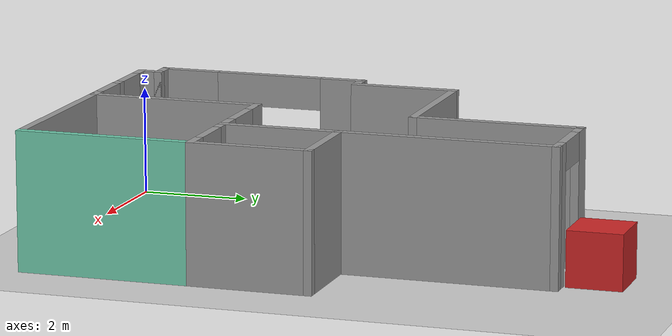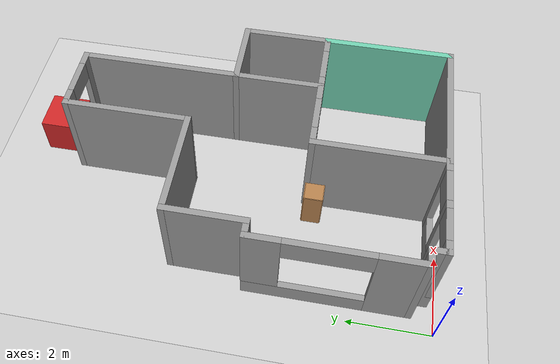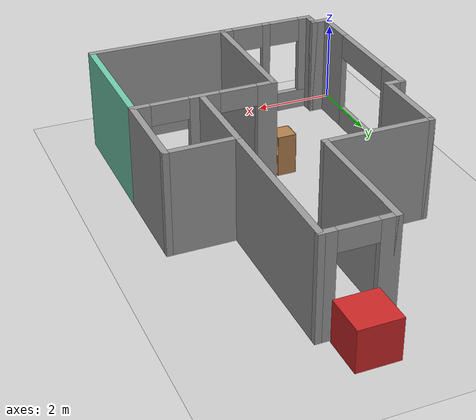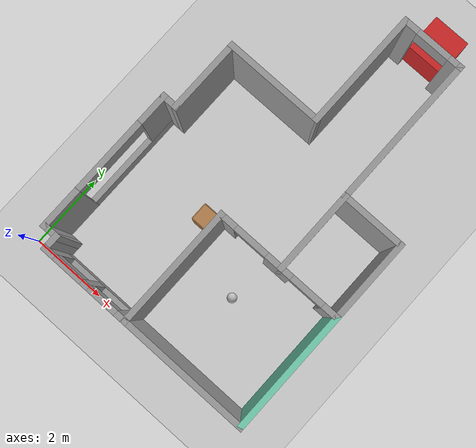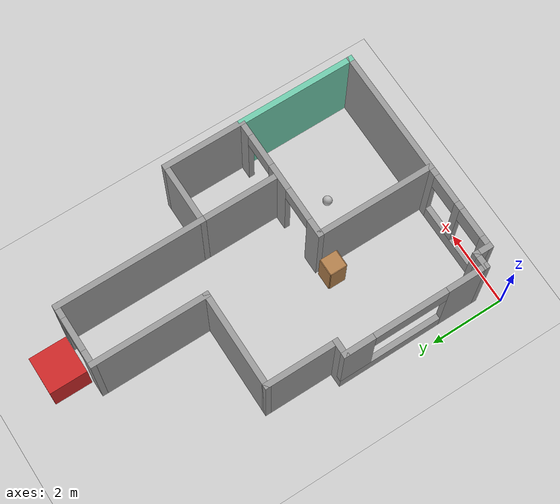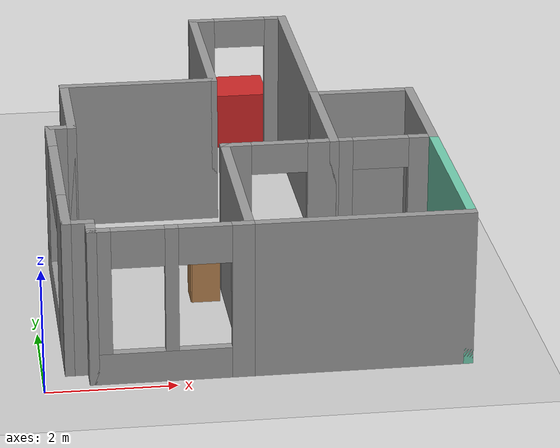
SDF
<sdf version="1.6">
 <world name="default">
  <light name="sun" type="directional">
   <pose>0 0 10 0 -0 0</pose>
   <diffuse>0.8 0.8 0.8 1</diffuse>
   <specular>0.2 0.2 0.2 1</specular>
   <attenuation>
    <range>1000</range>
    <constant>0.9</constant>
    <linear>0.01</linear>
    <quadratic>0.001</quadratic>
   </attenuation>
   <direction>-0.5 0.1 -0.9</direction>
  </light>
  <model name="ground_plane">
   <static>1</static>
   <link name="link">
    <collision name="collision">
     <geometry><plane><normal>0 0 1</normal><size>100 100</size></plane></geometry>
     <surface>
      <contact><collide_bitmask>65535</collide_bitmask></contact>
      <friction><ode><mu>100</mu><mu2>50</mu2></ode></friction>
     </surface>
    </collision>
    <visual name="visual">
     <cast_shadows>0</cast_shadows>
     <geometry><plane><normal>0 0 1</normal><size>100 100</size></plane></geometry>
     <material>
      <script><uri>file://media/materials/scripts/gazebo.material</uri><name>Gazebo/Grey</name></script>
     </material>
    </visual>
   </link>
  </model>
  <gravity>0 0 -9.8</gravity>
  <magnetic_field>6e-06 2.3e-05 -4.2e-05</magnetic_field>
  <atmosphere type="adiabatic"/>
  <physics name="default_physics" default="0" type="ode">
   <max_step_size>0.001</max_step_size>
   <real_time_factor>1</real_time_factor>
   <real_time_update_rate>1000</real_time_update_rate>
  </physics>
  <scene><ambient>0.4 0.4 0.4 1</ambient><background>0.7 0.7 0.7 1</background><shadows>1</shadows></scene>
  <spherical_coordinates>
   <surface_model>EARTH_WGS84</surface_model>
   <latitude_deg>0</latitude_deg>
   <longitude_deg>0</longitude_deg>
   <elevation>0</elevation>
   <heading_deg>0</heading_deg>
  </spherical_coordinates>
  <model name="Myplace">
   <pose>3.4372 4.76033 0 0 -0 0</pose>
   <link name="Wall_0">
    <collision name="Wall_0_Collision">
     <geometry><box><size>3.5 0.15 2.5</size></box></geometry>
     <pose>0 0 1.25 0 -0 0</pose>
    </collision>
    <visual name="Wall_0_Visual">
     <pose>0 0 1.25 0 -0 0</pose>
     <geometry><box><size>3.5 0.15 2.5</size></box></geometry>
     <material>
      <script><uri>file://media/materials/scripts/gazebo.material</uri><name>Gazebo/Grey</name></script>
      <ambient>1 1 1 1</ambient>
     </material>
     <meta><layer>0</layer></meta>
    </visual>
    <pose>1.35 -4.5295 0 0 -0 0</pose>
   </link>
   <link name="Wall_1">
    <collision name="Wall_1_Collision">
     <geometry><box><size>3.25 0.15 2.5</size></box></geometry>
     <pose>0 0 1.25 0 -0 0</pose>
    </collision>
    <visual name="Wall_1_Visual">
     <pose>0 0 1.25 0 -0 0</pose>
     <geometry><box><size>3.25 0.15 2.5</size></box></geometry>
     <material>
      <script><uri>file://media/materials/scripts/gazebo.material</uri><name>Gazebo/Grey</name></script>
      <ambient>0.435294 0.796078 0.67451 1</ambient>
     </material>
     <meta><layer>0</layer></meta>
    </visual>
    <pose>3.025 -2.9795 0 0 -0 1.5708</pose>
   </link>
   <link name="Wall_10">
    <collision name="Wall_10_Collision">
     <geometry><box><size>0.5 0.15 2.5</size></box></geometry>
     <pose>0 0 1.25 0 -0 0</pose>
    </collision>
    <visual name="Wall_10_Visual">
     <pose>0 0 1.25 0 -0 0</pose>
     <geometry><box><size>0.5 0.15 2.5</size></box></geometry>
     <material>
      <script><uri>file://media/materials/scripts/gazebo.material</uri><name>Gazebo/Grey</name></script>
      <ambient>1 1 1 1</ambient>
     </material>
     <meta><layer>0</layer></meta>
    </visual>
    <pose>-2.675 -4.3545 0 0 -0 1.5708</pose>
   </link>
   <link name="Wall_11">
    <collision name="Wall_11_Collision">
     <geometry><box><size>0.5 0.15 2.5</size></box></geometry>
     <pose>0 0 1.25 0 -0 0</pose>
    </collision>
    <visual name="Wall_11_Visual">
     <pose>0 0 1.25 0 -0 0</pose>
     <geometry><box><size>0.5 0.15 2.5</size></box></geometry>
     <material>
      <script><uri>file://media/materials/scripts/gazebo.material</uri><name>Gazebo/Grey</name></script>
      <ambient>1 1 1 1</ambient>
     </material>
     <meta><layer>0</layer></meta>
    </visual>
    <pose>-2.85 -4.1795 0 0 -0 3.14159</pose>
   </link>
   <link name="Wall_12">
    <pose>-3.025 -2.2545 0 0 -0 1.5708</pose>
    <visual name="Wall_12_Visual_0">
     <pose>-1.43085 0 1.25 0 -0 0</pose>
     <geometry><box><size>1.1383 0.15 2.5</size></box></geometry>
     <material>
      <script><uri>file://media/materials/scripts/gazebo.material</uri><name>Gazebo/Grey</name></script>
      <ambient>1 1 1 1</ambient>
     </material>
     <meta><layer>0</layer></meta>
    </visual>
    <collision name="Wall_12_Collision_0">
     <geometry><box><size>1.1383 0.15 2.5</size></box></geometry>
     <pose>-1.43085 0 1.25 0 -0 0</pose>
    </collision>
    <visual name="Wall_12_Visual_1">
     <pose>0.569148 0 0.25 0 -0 0</pose>
     <geometry><box><size>2.8617 0.15 0.5</size></box></geometry>
     <material>
      <script><uri>file://media/materials/scripts/gazebo.material</uri><name>Gazebo/Grey</name></script>
      <ambient>1 1 1 1</ambient>
     </material>
     <meta><layer>0</layer></meta>
    </visual>
    <collision name="Wall_12_Collision_1">
     <geometry><box><size>2.8617 0.15 0.5</size></box></geometry>
     <pose>0.569148 0 0.25 0 -0 0</pose>
    </collision>
    <visual name="Wall_12_Visual_2">
     <pose>1.56915 0 1.5 0 -0 0</pose>
     <geometry><box><size>0.861703 0.15 2</size></box></geometry>
     <material>
      <script><uri>file://media/materials/scripts/gazebo.material</uri><name>Gazebo/Grey</name></script>
      <ambient>1 1 1 1</ambient>
     </material>
     <meta><layer>0</layer></meta>
    </visual>
    <collision name="Wall_12_Collision_2">
     <geometry><box><size>0.861703 0.15 2</size></box></geometry>
     <pose>1.56915 0 1.5 0 -0 0</pose>
    </collision>
    <visual name="Wall_12_Visual_3">
     <pose>0.138297 0 2.2 0 -0 0</pose>
     <geometry><box><size>2 0.15 0.6</size></box></geometry>
     <material>
      <script><uri>file://media/materials/scripts/gazebo.material</uri><name>Gazebo/Grey</name></script>
      <ambient>1 1 1 1</ambient>
     </material>
     <meta><layer>0</layer></meta>
    </visual>
    <collision name="Wall_12_Collision_3">
     <geometry><box><size>2 0.15 0.6</size></box></geometry>
     <pose>0.138297 0 2.2 0 -0 0</pose>
    </collision>
   </link>
   <link name="Wall_13">
    <collision name="Wall_13_Collision">
     <geometry><box><size>0.5 0.15 2.5</size></box></geometry>
     <pose>0 0 1.25 0 -0 0</pose>
    </collision>
    <visual name="Wall_13_Visual">
     <pose>0 0 1.25 0 -0 0</pose>
     <geometry><box><size>0.5 0.15 2.5</size></box></geometry>
     <material>
      <script><uri>file://media/materials/scripts/gazebo.material</uri><name>Gazebo/Grey</name></script>
      <ambient>1 1 1 1</ambient>
     </material>
     <meta><layer>0</layer></meta>
    </visual>
    <pose>-2.85 -0.3295 0 0 -0 0</pose>
   </link>
   <link name="Wall_14">
    <collision name="Wall_14_Collision">
     <geometry><box><size>2.009 0.15 2.5</size></box></geometry>
     <pose>0 0 1.25 0 -0 0</pose>
    </collision>
    <visual name="Wall_14_Visual">
     <pose>0 0 1.25 0 -0 0</pose>
     <geometry><box><size>2.009 0.15 2.5</size></box></geometry>
     <material>
      <script><uri>file://media/materials/scripts/gazebo.material</uri><name>Gazebo/Grey</name></script>
      <ambient>1 1 1 1</ambient>
     </material>
     <meta><layer>0</layer></meta>
    </visual>
    <pose>-2.675 0.6 0 0 -0 1.5708</pose>
   </link>
   <link name="Wall_15">
    <collision name="Wall_15_Collision">
     <geometry><box><size>2.65002 0.15 2.5</size></box></geometry>
     <pose>0 0 1.25 0 -0 0</pose>
    </collision>
    <visual name="Wall_15_Visual">
     <pose>0 0 1.25 0 -0 0</pose>
     <geometry><box><size>2.65002 0.15 2.5</size></box></geometry>
     <material>
      <script><uri>file://media/materials/scripts/gazebo.material</uri><name>Gazebo/Grey</name></script>
      <ambient>1 1 1 1</ambient>
     </material>
     <meta><layer>0</layer></meta>
    </visual>
    <pose>-1.425 1.5295 0 0 -0 0</pose>
   </link>
   <link name="Wall_17">
    <collision name="Wall_17_Collision">
     <geometry><box><size>4.009 0.15 2.5</size></box></geometry>
     <pose>0 0 1.25 0 -0 0</pose>
    </collision>
    <visual name="Wall_17_Visual">
     <pose>0 0 1.25 0 -0 0</pose>
     <geometry><box><size>4.009 0.15 2.5</size></box></geometry>
     <material>
      <script><uri>file://media/materials/scripts/gazebo.material</uri><name>Gazebo/Grey</name></script>
      <ambient>1 1 1 1</ambient>
     </material>
     <meta><layer>0</layer></meta>
    </visual>
    <pose>1.425 2.6 0 0 -0 1.5708</pose>
   </link>
   <link name="Wall_18">
    <pose>0.625 4.5295 0 0 -0 3.14159</pose>
    <visual name="Wall_18_Visual_0">
     <pose>-0.676283 0 1.25 0 -0 0</pose>
     <geometry><box><size>0.397433 0.15 2.5</size></box></geometry>
     <material>
      <script><uri>file://media/materials/scripts/gazebo.material</uri><name>Gazebo/Grey</name></script>
      <ambient>1 1 1 1</ambient>
     </material>
     <meta><layer>0</layer></meta>
    </visual>
    <collision name="Wall_18_Collision_0">
     <geometry><box><size>0.397433 0.15 2.5</size></box></geometry>
     <pose>-0.676283 0 1.25 0 -0 0</pose>
    </collision>
    <visual name="Wall_18_Visual_1">
     <pose>0.648717 0 1.25 0 -0 0</pose>
     <geometry><box><size>0.452567 0.15 2.5</size></box></geometry>
     <material>
      <script><uri>file://media/materials/scripts/gazebo.material</uri><name>Gazebo/Grey</name></script>
      <ambient>1 1 1 1</ambient>
     </material>
     <meta><layer>0</layer></meta>
    </visual>
    <collision name="Wall_18_Collision_1">
     <geometry><box><size>0.452567 0.15 2.5</size></box></geometry>
     <pose>0.648717 0 1.25 0 -0 0</pose>
    </collision>
    <visual name="Wall_18_Visual_2">
     <pose>-0.027567 0 2.25 0 -0 0</pose>
     <geometry><box><size>0.9 0.15 0.5</size></box></geometry>
     <material>
      <script><uri>file://media/materials/scripts/gazebo.material</uri><name>Gazebo/Grey</name></script>
      <ambient>1 1 1 1</ambient>
     </material>
     <meta><layer>0</layer></meta>
    </visual>
    <collision name="Wall_18_Collision_2">
     <geometry><box><size>0.9 0.15 0.5</size></box></geometry>
     <pose>-0.027567 0 2.25 0 -0 0</pose>
    </collision>
   </link>
   <link name="Wall_19">
    <collision name="Wall_19_Collision">
     <geometry><box><size>3.15 0.15 2.5</size></box></geometry>
     <pose>0 0 1.25 0 -0 0</pose>
    </collision>
    <visual name="Wall_19_Visual">
     <pose>0 0 1.25 0 -0 0</pose>
     <geometry><box><size>3.15 0.15 2.5</size></box></geometry>
     <material>
      <script><uri>file://media/materials/scripts/gazebo.material</uri><name>Gazebo/Grey</name></script>
      <ambient>1 1 1 1</ambient>
     </material>
     <meta><layer>0</layer></meta>
    </visual>
    <pose>-0.175 3.0295 0 0 0 -1.5708</pose>
   </link>
   <link name="Wall_2">
    <pose>1.35 -1.4295 0 0 -0 3.14159</pose>
    <visual name="Wall_2_Visual_0">
     <pose>-1.5127 0 1.25 0 -0 0</pose>
     <geometry><box><size>0.474589 0.15 2.5</size></box></geometry>
     <material>
      <script><uri>file://media/materials/scripts/gazebo.material</uri><name>Gazebo/Grey</name></script>
      <ambient>1 1 1 1</ambient>
     </material>
     <meta><layer>0</layer></meta>
    </visual>
    <collision name="Wall_2_Collision_0">
     <geometry><box><size>0.474589 0.15 2.5</size></box></geometry>
     <pose>-1.5127 0 1.25 0 -0 0</pose>
    </collision>
    <visual name="Wall_2_Visual_1">
     <pose>-0.011425 0 1.25 0 -0 0</pose>
     <geometry><box><size>0.727971 0.15 2.5</size></box></geometry>
     <material>
      <script><uri>file://media/materials/scripts/gazebo.material</uri><name>Gazebo/Grey</name></script>
      <ambient>1 1 1 1</ambient>
     </material>
     <meta><layer>0</layer></meta>
    </visual>
    <collision name="Wall_2_Collision_1">
     <geometry><box><size>0.727971 0.15 2.5</size></box></geometry>
     <pose>-0.011425 0 1.25 0 -0 0</pose>
    </collision>
    <visual name="Wall_2_Visual_2">
     <pose>1.50128 0 1.25 0 -0 0</pose>
     <geometry><box><size>0.49744 0.15 2.5</size></box></geometry>
     <material>
      <script><uri>file://media/materials/scripts/gazebo.material</uri><name>Gazebo/Grey</name></script>
      <ambient>1 1 1 1</ambient>
     </material>
     <meta><layer>0</layer></meta>
    </visual>
    <collision name="Wall_2_Collision_2">
     <geometry><box><size>0.49744 0.15 2.5</size></box></geometry>
     <pose>1.50128 0 1.25 0 -0 0</pose>
    </collision>
    <visual name="Wall_2_Visual_3">
     <pose>-0.825411 0 2.25 0 -0 0</pose>
     <geometry><box><size>0.9 0.15 0.5</size></box></geometry>
     <material>
      <script><uri>file://media/materials/scripts/gazebo.material</uri><name>Gazebo/Grey</name></script>
      <ambient>1 1 1 1</ambient>
     </material>
     <meta><layer>0</layer></meta>
    </visual>
    <collision name="Wall_2_Collision_3">
     <geometry><box><size>0.9 0.15 0.5</size></box></geometry>
     <pose>-0.825411 0 2.25 0 -0 0</pose>
    </collision>
    <visual name="Wall_2_Visual_4">
     <pose>0.80256 0 2.25 0 -0 0</pose>
     <geometry><box><size>0.9 0.15 0.5</size></box></geometry>
     <material>
      <script><uri>file://media/materials/scripts/gazebo.material</uri><name>Gazebo/Grey</name></script>
      <ambient>1 1 1 1</ambient>
     </material>
     <meta><layer>0</layer></meta>
    </visual>
    <collision name="Wall_2_Collision_4">
     <geometry><box><size>0.9 0.15 0.5</size></box></geometry>
     <pose>0.80256 0 2.25 0 -0 0</pose>
    </collision>
   </link>
   <link name="Wall_3">
    <collision name="Wall_3_Collision">
     <geometry><box><size>3.25 0.15 2.5</size></box></geometry>
     <pose>0 0 1.25 0 -0 0</pose>
    </collision>
    <visual name="Wall_3_Visual">
     <pose>0 0 1.25 0 -0 0</pose>
     <geometry><box><size>3.25 0.15 2.5</size></box></geometry>
     <material>
      <script><uri>file://media/materials/scripts/gazebo.material</uri><name>Gazebo/Grey</name></script>
      <ambient>1 1 1 1</ambient>
     </material>
     <meta><layer>0</layer></meta>
    </visual>
    <pose>-0.325 -2.9795 0 0 0 -1.5708</pose>
   </link>
   <link name="Wall_5">
    <collision name="Wall_5_Collision">
     <geometry><box><size>2.25 0.15 2.5</size></box></geometry>
     <pose>0 0 1.25 0 -0 0</pose>
    </collision>
    <visual name="Wall_5_Visual">
     <pose>0 0 1.25 0 -0 0</pose>
     <geometry><box><size>2.25 0.15 2.5</size></box></geometry>
     <material>
      <script><uri>file://media/materials/scripts/gazebo.material</uri><name>Gazebo/Grey</name></script>
      <ambient>1 1 1 1</ambient>
     </material>
     <meta><layer>0</layer></meta>
    </visual>
    <pose>3.025 -0.3795 0 0 -0 1.5708</pose>
   </link>
   <link name="Wall_6">
    <collision name="Wall_6_Collision">
     <geometry><box><size>1.75 0.15 2.5</size></box></geometry>
     <pose>0 0 1.25 0 -0 0</pose>
    </collision>
    <visual name="Wall_6_Visual">
     <pose>0 0 1.25 0 -0 0</pose>
     <geometry><box><size>1.75 0.15 2.5</size></box></geometry>
     <material>
      <script><uri>file://media/materials/scripts/gazebo.material</uri><name>Gazebo/Grey</name></script>
      <ambient>1 1 1 1</ambient>
     </material>
     <meta><layer>0</layer></meta>
    </visual>
    <pose>2.225 0.6705 0 0 -0 3.14159</pose>
   </link>
   <link name="Wall_7">
    <collision name="Wall_7_Collision">
     <geometry><box><size>2.25 0.15 2.5</size></box></geometry>
     <pose>0 0 1.25 0 -0 0</pose>
    </collision>
    <visual name="Wall_7_Visual">
     <pose>0 0 1.25 0 -0 0</pose>
     <geometry><box><size>2.25 0.15 2.5</size></box></geometry>
     <material>
      <script><uri>file://media/materials/scripts/gazebo.material</uri><name>Gazebo/Grey</name></script>
      <ambient>1 1 1 1</ambient>
     </material>
     <meta><layer>0</layer></meta>
    </visual>
    <pose>1.425 -0.3795 0 0 0 -1.5708</pose>
   </link>
   <link name="Wall_9">
    <pose>-1.5 -4.5295 0 0 -0 3.14159</pose>
    <visual name="Wall_9_Visual_0">
     <pose>-1.07948 0 1.25 0 -0 0</pose>
     <geometry><box><size>0.341046 0.15 2.5</size></box></geometry>
     <material>
      <script><uri>file://media/materials/scripts/gazebo.material</uri><name>Gazebo/Grey</name></script>
      <ambient>1 1 1 1</ambient>
     </material>
     <meta><layer>0</layer></meta>
    </visual>
    <collision name="Wall_9_Collision_0">
     <geometry><box><size>0.341046 0.15 2.5</size></box></geometry>
     <pose>-1.07948 0 1.25 0 -0 0</pose>
    </collision>
    <visual name="Wall_9_Visual_1">
     <pose>0.170523 0 0.25 0 -0 0</pose>
     <geometry><box><size>2.15895 0.15 0.5</size></box></geometry>
     <material>
      <script><uri>file://media/materials/scripts/gazebo.material</uri><name>Gazebo/Grey</name></script>
      <ambient>1 1 1 1</ambient>
     </material>
     <meta><layer>0</layer></meta>
    </visual>
    <collision name="Wall_9_Collision_1">
     <geometry><box><size>2.15895 0.15 0.5</size></box></geometry>
     <pose>0.170523 0 0.25 0 -0 0</pose>
    </collision>
    <visual name="Wall_9_Visual_2">
     <pose>-0.007907 0 1.5 0 -0 0</pose>
     <geometry><box><size>0.202094 0.15 2</size></box></geometry>
     <material>
      <script><uri>file://media/materials/scripts/gazebo.material</uri><name>Gazebo/Grey</name></script>
      <ambient>1 1 1 1</ambient>
     </material>
     <meta><layer>0</layer></meta>
    </visual>
    <collision name="Wall_9_Collision_2">
     <geometry><box><size>0.202094 0.15 2</size></box></geometry>
     <pose>-0.007907 0 1.5 0 -0 0</pose>
    </collision>
    <visual name="Wall_9_Visual_3">
     <pose>1.07157 0 1.5 0 -0 0</pose>
     <geometry><box><size>0.35686 0.15 2</size></box></geometry>
     <material>
      <script><uri>file://media/materials/scripts/gazebo.material</uri><name>Gazebo/Grey</name></script>
      <ambient>1 1 1 1</ambient>
     </material>
     <meta><layer>0</layer></meta>
    </visual>
    <collision name="Wall_9_Collision_3">
     <geometry><box><size>0.35686 0.15 2</size></box></geometry>
     <pose>1.07157 0 1.5 0 -0 0</pose>
    </collision>
    <visual name="Wall_9_Visual_4">
     <pose>-0.508954 0 2.2 0 -0 0</pose>
     <geometry><box><size>0.8 0.15 0.6</size></box></geometry>
     <material>
      <script><uri>file://media/materials/scripts/gazebo.material</uri><name>Gazebo/Grey</name></script>
      <ambient>1 1 1 1</ambient>
     </material>
     <meta><layer>0</layer></meta>
    </visual>
    <collision name="Wall_9_Collision_4">
     <geometry><box><size>0.8 0.15 0.6</size></box></geometry>
     <pose>-0.508954 0 2.2 0 -0 0</pose>
    </collision>
    <visual name="Wall_9_Visual_5">
     <pose>0.49314 0 2.2 0 -0 0</pose>
     <geometry><box><size>0.8 0.15 0.6</size></box></geometry>
     <material>
      <script><uri>file://media/materials/scripts/gazebo.material</uri><name>Gazebo/Grey</name></script>
      <ambient>1 1 1 1</ambient>
     </material>
     <meta><layer>0</layer></meta>
    </visual>
    <collision name="Wall_9_Collision_5">
     <geometry><box><size>0.8 0.15 0.6</size></box></geometry>
     <pose>0.49314 0 2.2 0 -0 0</pose>
    </collision>
   </link>
   <static>1</static>
  </model>
  <model name="cabinet">
   <static>1</static>
   <link name="cabinet_bottom_plate">
    <inertial>
     <pose>0 0 -1 0 -0 0</pose>
     <inertia><ixx>2.05</ixx><ixy>0</ixy><ixz>0</ixz><iyy>2.05</iyy><iyz>0</iyz><izz>2.05</izz></inertia>
     <mass>25</mass>
    </inertial>
    <collision name="cabinet_bottom_plate_geom">
     <pose>0 0 0.01 0 -0 0</pose>
     <geometry><box><size>0.45 0.45 0.02</size></box></geometry>
    </collision>
    <visual name="cabinet_bottom_plate_geom_visual">
     <pose>0 0 0.01 0 -0 0</pose>
     <geometry><box><size>0.45 0.45 0.02</size></box></geometry>
     <material>
      <script><uri>file://media/materials/scripts/gazebo.material</uri><name>Gazebo/Wood</name></script>
     </material>
    </visual>
    <collision name="cabinet_bottom_plate_geom_cabinet_back_plate">
     <pose>0.235 0 0.51 0 -0 0</pose>
     <geometry><box><size>0.02 0.45 1.02</size></box></geometry>
    </collision>
    <visual name="cabinet_bottom_plate_geom_cabinet_back_plate_visual">
     <pose>0.235 0 0.51 0 -0 0</pose>
     <geometry><box><size>0.02 0.45 1.02</size></box></geometry>
     <material>
      <script><uri>file://media/materials/scripts/gazebo.material</uri><name>Gazebo/Wood</name></script>
     </material>
    </visual>
    <collision name="cabinet_bottom_plate_geom_cabinet_left_plate">
     <pose>0 0.235 0.51 0 -0 0</pose>
     <geometry><box><size>0.45 0.02 1.02</size></box></geometry>
    </collision>
    <visual name="cabinet_bottom_plate_geom_cabinet_left_plate_visual">
     <pose>0 0.235 0.51 0 -0 0</pose>
     <geometry><box><size>0.45 0.02 1.02</size></box></geometry>
     <material>
      <script><uri>file://media/materials/scripts/gazebo.material</uri><name>Gazebo/Wood</name></script>
     </material>
    </visual>
    <collision name="cabinet_bottom_plate_geom_cabinet_middle_plate">
     <pose>0 0 0.51 0 -0 0</pose>
     <geometry><box><size>0.45 0.45 0.02</size></box></geometry>
    </collision>
    <visual name="cabinet_bottom_plate_geom_cabinet_middle_plate_visual">
     <pose>0 0 0.51 0 -0 0</pose>
     <geometry><box><size>0.45 0.45 0.02</size></box></geometry>
     <material>
      <script><uri>file://media/materials/scripts/gazebo.material</uri><name>Gazebo/Wood</name></script>
     </material>
    </visual>
    <collision name="cabinet_bottom_plate_geom_cabinet_right_plate">
     <pose>0 -0.235 0.51 0 -0 0</pose>
     <geometry><box><size>0.45 0.02 1.02</size></box></geometry>
    </collision>
    <visual name="cabinet_bottom_plate_geom_cabinet_right_plate_visual">
     <pose>0 -0.235 0.51 0 -0 0</pose>
     <geometry><box><size>0.45 0.02 1.02</size></box></geometry>
     <material>
      <script><uri>file://media/materials/scripts/gazebo.material</uri><name>Gazebo/Wood</name></script>
     </material>
    </visual>
    <collision name="cabinet_bottom_plate_geom_cabinet_top_plate">
     <pose>0 0 1.01 0 -0 0</pose>
     <geometry><box><size>0.45 0.45 0.02</size></box></geometry>
    </collision>
    <visual name="cabinet_bottom_plate_geom_cabinet_top_plate_visual">
     <pose>0 0 1.01 0 -0 0</pose>
     <geometry><box><size>0.45 0.45 0.02</size></box></geometry>
     <material>
      <script><uri>file://media/materials/scripts/gazebo.material</uri><name>Gazebo/Wood</name></script>
     </material>
    </visual>
   </link>
   <pose>2.7545 3.1166 0 0 -0 3.1415</pose>
  </model>
  <plugin name="collision_map_creator" filename="libcollision_map_creator.so"/>
  <model name="unit_box">
   <link name="link">
    <inertial>
     <mass>1</mass>
     <inertia>
      <ixx>0.166667</ixx>
      <ixy>0</ixy>
      <ixz>0</ixz>
      <iyy>0.166667</iyy>
      <iyz>0</iyz>
      <izz>0.166667</izz>
     </inertia>
    </inertial>
    <visual name="visual">
     <geometry><box><size>1 1 1</size></box></geometry>
     <material>
      <script><name>Gazebo/Red</name><uri>file://media/materials/scripts/gazebo.material</uri></script>
      <shader type="pixel"><normal_map>__default__</normal_map></shader>
      <ambient>0.3 0.3 0.3 1</ambient>
      <diffuse>0.7 0.7 0.7 1</diffuse>
      <specular>0.01 0.01 0.01 1</specular>
      <emissive>0 0 0 1</emissive>
     </material>
    </visual>
    <collision name="collision">
     <geometry><box><size>1 1 1</size></box></geometry>
     <surface>
      <friction>
       <ode><mu>1</mu><mu2>1</mu2><fdir1>0 0 0</fdir1><slip1>0</slip1><slip2>0</slip2></ode>
       <torsional>
        <coefficient>1</coefficient>
        <patch_radius>0</patch_radius>
        <surface_radius>0</surface_radius>
        <use_patch_radius>1</use_patch_radius>
        <ode><slip>0</slip></ode>
       </torsional>
      </friction>
      <bounce><restitution_coefficient>0</restitution_coefficient><threshold>1e+06</threshold></bounce>
      <contact>
       <collide_without_contact>0</collide_without_contact>
       <collide_without_contact_bitmask>1</collide_without_contact_bitmask>
       <collide_bitmask>1</collide_bitmask>
       <ode>
        <soft_cfm>0</soft_cfm>
        <soft_erp>0.2</soft_erp>
        <kp>1e+13</kp>
        <kd>1</kd>
        <max_vel>0.01</max_vel>
        <min_depth>0</min_depth>
       </ode>
       <bullet>
        <split_impulse>1</split_impulse>
        <split_impulse_penetration_threshold>-0.01</split_impulse_penetration_threshold>
        <soft_cfm>0</soft_cfm>
        <soft_erp>0.2</soft_erp>
        <kp>1e+13</kp>
        <kd>1</kd>
       </bullet>
      </contact>
     </surface>
    </collision>
   </link>
   <static>0</static>
   <pose>4.12026 9.90531 0.5 0 -0 0</pose>
  </model>
  <model name="frc2016_ball">
   <pose>4.43945 2.12819 0.127 0 -0 0</pose>
   <link name="link">
    <inertial>
     <mass>0.213</mass>
     <inertia>
      <ixx>0.00322667</ixx>
      <ixy>0</ixy>
      <ixz>0</ixz>
      <iyy>0.00322667</iyy>
      <iyz>0</iyz>
      <izz>0.00322667</izz>
     </inertia>
    </inertial>
    <visual name="visual"><geometry><sphere><radius>0.127</radius></sphere></geometry></visual>
    <collision name="collision">
     <geometry><sphere><radius>0.127</radius></sphere></geometry>
     <surface>
      <bounce><restitution_coefficient>0.15937</restitution_coefficient><threshold>0</threshold></bounce>
      <contact><ode><max_vel>100</max_vel><min_depth>0.001</min_depth></ode></contact>
     </surface>
    </collision>
   </link>
  </model>
 </world>
</sdf>
